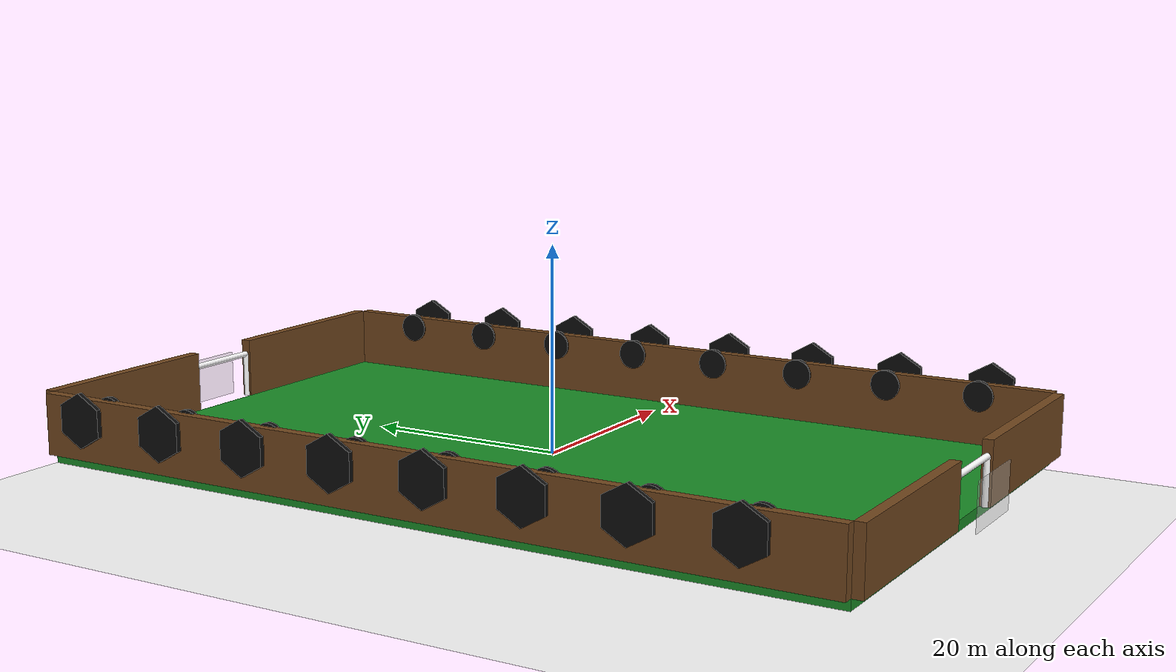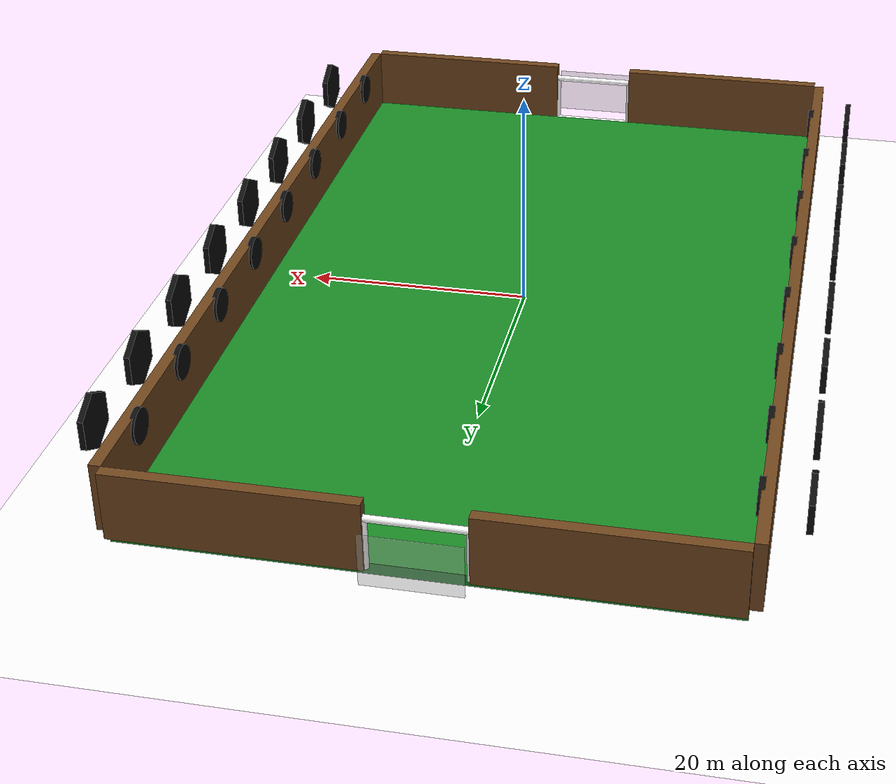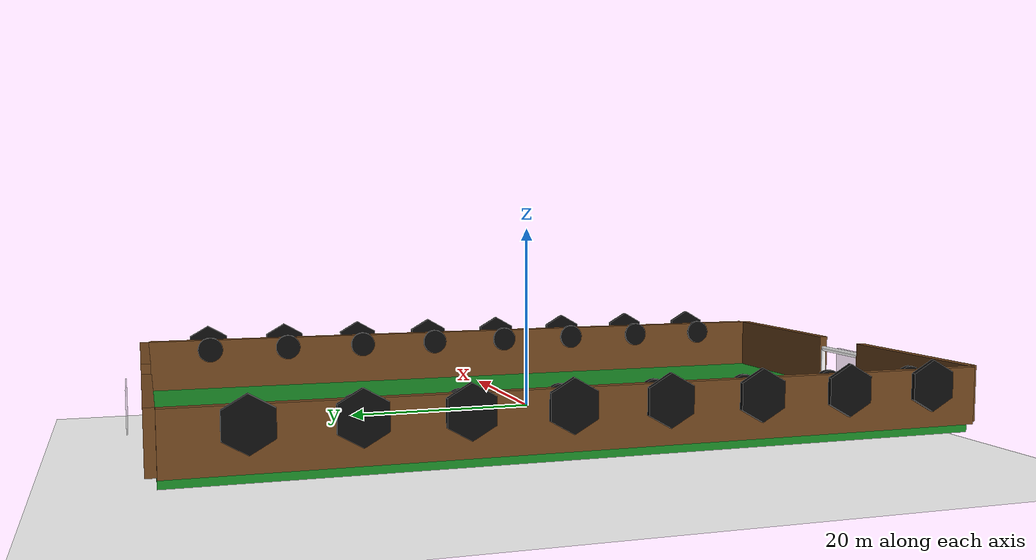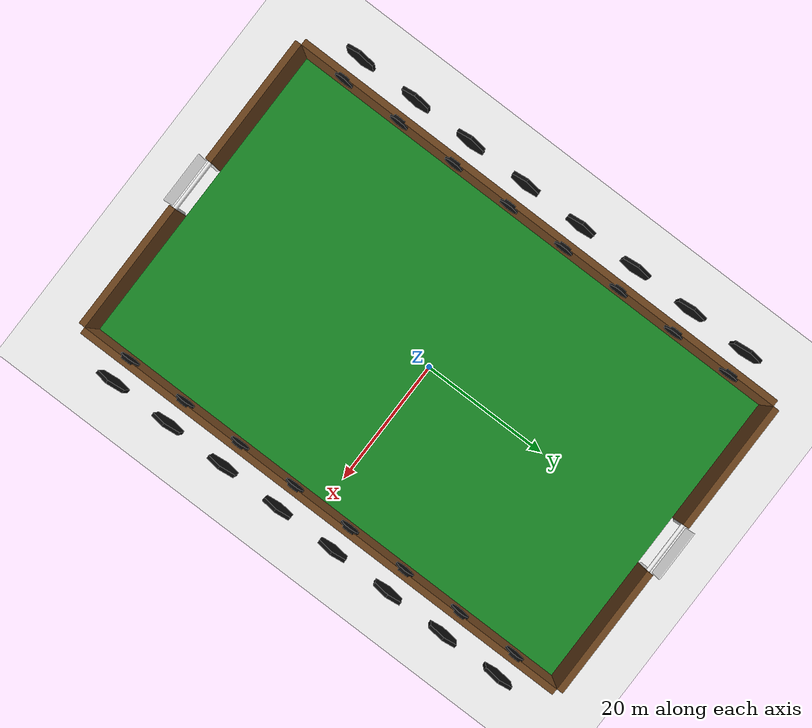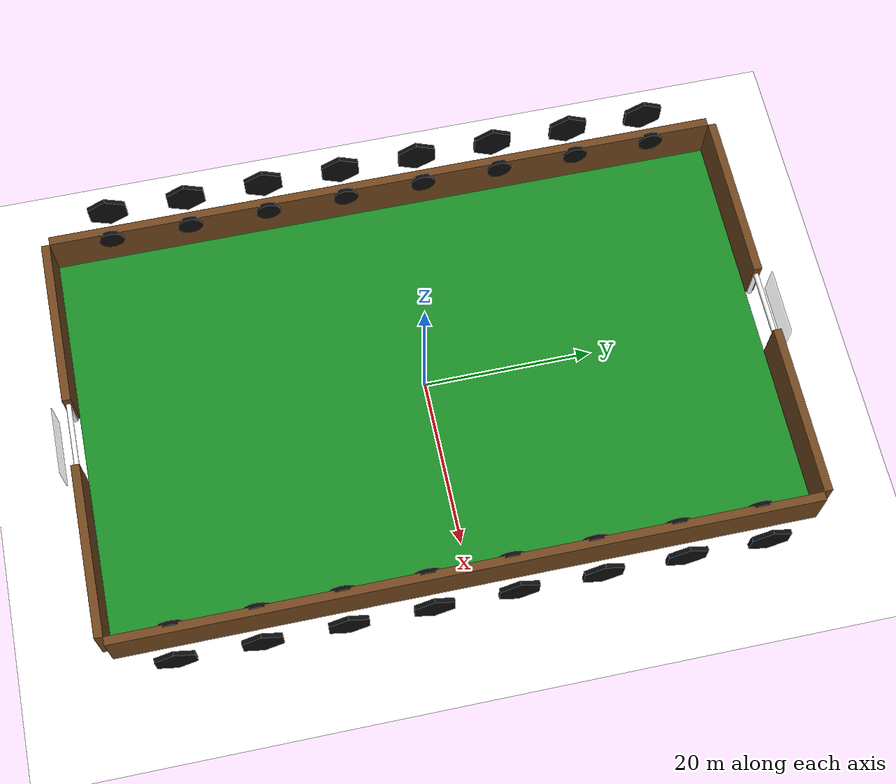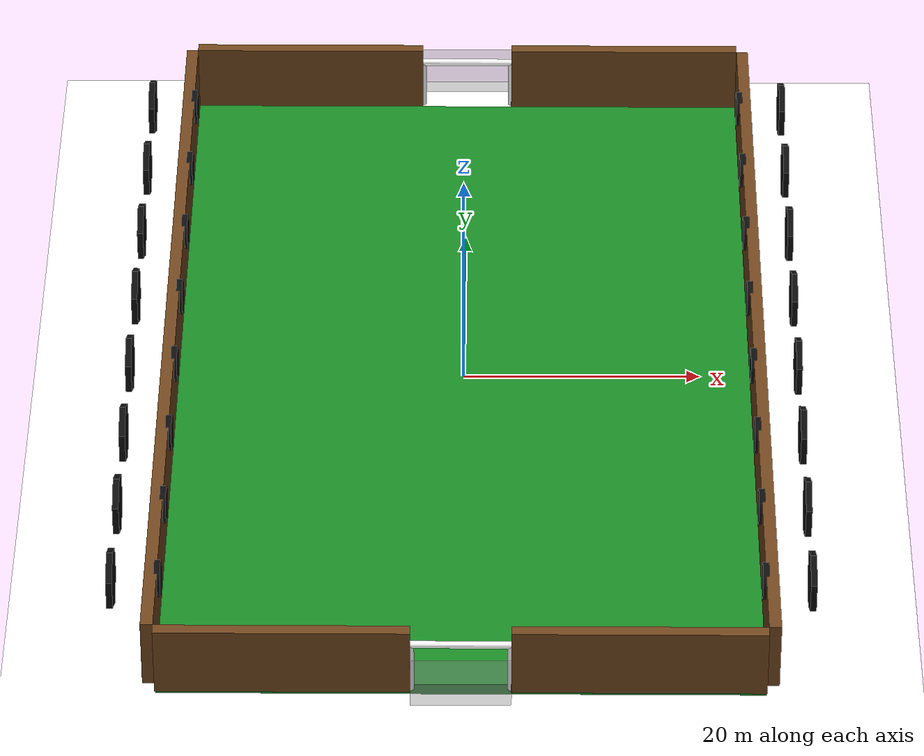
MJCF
<mujoco>

    <statistic meansize=".05"/>

    <default>
      <geom solref="0.004 1" solimp=".99 .99 .00001" condim="4"/>
    </default>

    <asset>
      <mesh name="outside_rubber" file="asset/outside_rubber/table_outside_rubber.obj" scale='0.1 0.1 0.1'/>
    </asset>

    <worldbody>
      <light directional="true" specular="0.2 0.2 0.2" pos="0 0 4" dir="0 0 -1"/>

      <body name="background" pos="0 0 -5" euler="0 0 0">
        <geom type="plane" size="500 500 .01" rgba="1.0 1.0 1.0 1.0" contype="0" conaffinity="0"/>
      </body>

      <!-- Playing field: half-width=24.25, half-length=40.5 (real 48.5×81 cm)
           Box top surface at Z=0 (the playing surface). -->
      <body name="ground" pos="0 0 -0.5" euler="0 0 180">
        <geom type="box" size="24.25 40.5 0.5" rgba="0.1 0.55 0.15 1" friction="0.01 0.1 10"/>
      </body>

      <!-- Y goalie rod Y=-33.25 -->
      <body name="table_side_rubber_y_goal_r">
        <geom type="cylinder" pos="-24.25 -33.25 4.8" euler="90 90 0" size="1.5 0.25"
              contype="5" conaffinity="5" rgba='0.05 0.05 0.05 1' friction="0.01" group="2"/>
      </body>
      <body name="table_side_rubber_y_goal_l">
        <geom type="cylinder" pos="24.25 -33.25 4.8" euler="90 90 0" size="1.5 0.25"
              contype="5" conaffinity="5" rgba='0.05 0.05 0.05 1' friction="0.01" group="2"/>
      </body>

      <!-- Y defense rod Y=-23.75 -->
      <body name="table_side_rubber_y_def_r">
        <geom type="cylinder" pos="-24.25 -23.75 4.8" euler="90 90 0" size="1.5 0.25"
              contype="5" conaffinity="5" rgba='0.05 0.05 0.05 1' friction="0.01" group="2"/>
      </body>
      <body name="table_side_rubber_y_def_l">
        <geom type="cylinder" pos="24.25 -23.75 4.8" euler="90 90 0" size="1.5 0.25"
              contype="5" conaffinity="5" rgba='0.05 0.05 0.05 1' friction="0.01" group="2"/>
      </body>

      <!-- Y midfield rod Y=-4.75 -->
      <body name="table_side_rubber_y_mid_r">
        <geom type="cylinder" pos="-24.25 -4.75 4.8" euler="90 90 0" size="1.5 0.25"
              contype="5" conaffinity="5" rgba='0.05 0.05 0.05 1' friction="0.01" group="2"/>
      </body>
      <body name="table_side_rubber_y_mid_l">
        <geom type="cylinder" pos="24.25 -4.75 4.8" euler="90 90 0" size="1.5 0.25"
              contype="5" conaffinity="5" rgba='0.05 0.05 0.05 1' friction="0.01" group="2"/>
      </body>

      <!-- Y attack rod Y=14.25 -->
      <body name="table_side_rubber_y_attack_r">
        <geom type="cylinder" pos="-24.25 14.25 4.8" euler="90 90 0" size="1.5 0.25"
              contype="5" conaffinity="5" rgba='0.05 0.05 0.05 1' friction="0.01" group="2"/>
      </body>
      <body name="table_side_rubber_y_attack_l">
        <geom type="cylinder" pos="24.25 14.25 4.8" euler="90 90 0" size="1.5 0.25"
              contype="5" conaffinity="5" rgba='0.05 0.05 0.05 1' friction="0.01" group="2"/>
      </body>

      <!-- B goalie rod Y=33.25 -->
      <body name="table_side_rubber_b_goal_r">
        <geom type="cylinder" pos="-24.25 33.25 4.8" euler="90 90 0" size="1.5 0.25"
              contype="5" conaffinity="5" rgba='0.05 0.05 0.05 1' friction="0.01" group="2"/>
      </body>
      <body name="table_side_rubber_b_goal_l">
        <geom type="cylinder" pos="24.25 33.25 4.8" euler="90 90 0" size="1.5 0.25"
              contype="5" conaffinity="5" rgba='0.05 0.05 0.05 1' friction="0.01" group="2"/>
      </body>

      <!-- B defense rod Y=23.75 -->
      <body name="table_side_rubber_b_def_r">
        <geom type="cylinder" pos="-24.25 23.75 4.8" euler="90 90 0" size="1.5 0.25"
              contype="5" conaffinity="5" rgba='0.05 0.05 0.05 1' friction="0.01" group="2"/>
      </body>
      <body name="table_side_rubber_b_def_l">
        <geom type="cylinder" pos="24.25 23.75 4.8" euler="90 90 0" size="1.5 0.25"
              contype="5" conaffinity="5" rgba='0.05 0.05 0.05 1' friction="0.01" group="2"/>
      </body>

      <!-- B midfield rod Y=4.75 -->
      <body name="table_side_rubber_b_mid_r">
        <geom type="cylinder" pos="-24.25 4.75 4.8" euler="90 90 0" size="1.5 0.25"
              contype="5" conaffinity="5" rgba='0.05 0.05 0.05 1' friction="0.01" group="2"/>
      </body>
      <body name="table_side_rubber_b_mid_l">
        <geom type="cylinder" pos="24.25 4.75 4.8" euler="90 90 0" size="1.5 0.25"
              contype="5" conaffinity="5" rgba='0.05 0.05 0.05 1' friction="0.01" group="2"/>
      </body>

      <!-- B attack rod Y=-14.25 -->
      <body name="table_side_rubber_b_attack_r">
        <geom type="cylinder" pos="-24.25 -14.25 4.8" euler="90 90 0" size="1.5 0.25"
              contype="5" conaffinity="5" rgba='0.05 0.05 0.05 1' friction="0.01" group="2"/>
      </body>
      <body name="table_side_rubber_b_attack_l">
        <geom type="cylinder" pos="24.25 -14.25 4.8" euler="90 90 0" size="1.5 0.25"
              contype="5" conaffinity="5" rgba='0.05 0.05 0.05 1' friction="0.01" group="2"/>
      </body>

    <!-- Outside rubber pads (visual only) -->
      <body name="outside_rubber_y_goal_r" pos="-28 -33.25 4.8" euler="0 0 90">
        <geom contype="0" conaffinity="0" type="mesh" mesh="outside_rubber" rgba='0.05 0.05 0.05 1' group="2"/>
      </body>
      <body name="outside_rubber_y_goal_l" pos="28 -33.25 4.8" euler="0 0 90">
        <geom contype="0" conaffinity="0" type="mesh" mesh="outside_rubber" rgba='0.05 0.05 0.05 1' group="2"/>
      </body>
      <body name="outside_rubber_y_def_r" pos="-28 -23.75 4.8" euler="0 0 90">
        <geom contype="0" conaffinity="0" type="mesh" mesh="outside_rubber" rgba='0.05 0.05 0.05 1' group="2"/>
      </body>
      <body name="outside_rubber_y_def_l" pos="28 -23.75 4.8" euler="0 0 90">
        <geom contype="0" conaffinity="0" type="mesh" mesh="outside_rubber" rgba='0.05 0.05 0.05 1' group="2"/>
      </body>
      <body name="outside_rubber_y_mid_r" pos="-28 -4.75 4.8" euler="0 0 90">
        <geom contype="0" conaffinity="0" type="mesh" mesh="outside_rubber" rgba='0.05 0.05 0.05 1' group="2"/>
      </body>
      <body name="outside_rubber_y_mid_l" pos="28 -4.75 4.8" euler="0 0 90">
        <geom contype="0" conaffinity="0" type="mesh" mesh="outside_rubber" rgba='0.05 0.05 0.05 1' group="2"/>
      </body>
      <body name="outside_rubber_y_attack_r" pos="-28 14.25 4.8" euler="0 0 90">
        <geom contype="0" conaffinity="0" type="mesh" mesh="outside_rubber" rgba='0.05 0.05 0.05 1' group="2"/>
      </body>
      <body name="outside_rubber_y_attack_l" pos="28 14.25 4.8" euler="0 0 90">
        <geom contype="0" conaffinity="0" type="mesh" mesh="outside_rubber" rgba='0.05 0.05 0.05 1' group="2"/>
      </body>

      <body name="outside_rubber_b_goal_r" pos="-28 33.25 4.8" euler="0 0 90">
        <geom contype="0" conaffinity="0" type="mesh" mesh="outside_rubber" rgba='0.05 0.05 0.05 1' group="2"/>
      </body>
      <body name="outside_rubber_b_goal_l" pos="28 33.25 4.8" euler="0 0 90">
        <geom contype="0" conaffinity="0" type="mesh" mesh="outside_rubber" rgba='0.05 0.05 0.05 1' group="2"/>
      </body>
      <body name="outside_rubber_b_def_r" pos="-28 23.75 4.8" euler="0 0 90">
        <geom contype="0" conaffinity="0" type="mesh" mesh="outside_rubber" rgba='0.05 0.05 0.05 1' group="2"/>
      </body>
      <body name="outside_rubber_b_def_l" pos="28 23.75 4.8" euler="0 0 90">
        <geom contype="0" conaffinity="0" type="mesh" mesh="outside_rubber" rgba='0.05 0.05 0.05 1' group="2"/>
      </body>
      <body name="outside_rubber_b_mid_r" pos="-28 4.75 4.8" euler="0 0 90">
        <geom contype="0" conaffinity="0" type="mesh" mesh="outside_rubber" rgba='0.05 0.05 0.05 1' group="2"/>
      </body>
      <body name="outside_rubber_b_mid_l" pos="28 4.75 4.8" euler="0 0 90">
        <geom contype="0" conaffinity="0" type="mesh" mesh="outside_rubber" rgba='0.05 0.05 0.05 1' group="2"/>
      </body>
      <body name="outside_rubber_b_attack_r" pos="-28 -14.25 4.8" euler="0 0 90">
        <geom contype="0" conaffinity="0" type="mesh" mesh="outside_rubber" rgba='0.05 0.05 0.05 1' group="2"/>
      </body>
      <body name="outside_rubber_b_attack_l" pos="28 -14.25 4.8" euler="0 0 90">
        <geom contype="0" conaffinity="0" type="mesh" mesh="outside_rubber" rgba='0.05 0.05 0.05 1' group="2"/>
      </body>

      <!-- SIDE WALLS — long brown boxes along the full length -->
      <!-- Left wall at X = -24.25 -->
      <body name="wall_left" pos="-24.75 0 3">
        <geom type="box" size="0.5 40.5 3" rgba="0.45 0.28 0.12 1"
              contype="0" conaffinity="0" group="2"/>
      </body>
      <!-- Right wall at X = +24.25 -->
      <body name="wall_right" pos="24.75 0 3">
        <geom type="box" size="0.5 40.5 3" rgba="0.45 0.28 0.12 1"
              contype="0" conaffinity="0" group="2"/>
      </body>

      <!-- END WALL — Yellow end (Y = -40.5), split around goal opening (X ±4.0) -->
      <!-- Left segment: X from -24.25 to -4.0 → half-width 10.125, center X = -14.125 -->
      <body name="wall_y_end_left" pos="-14.125 -41.0 3">
        <geom type="box" size="10.125 0.5 3" rgba="0.45 0.28 0.12 1"
              contype="0" conaffinity="0" group="2"/>
      </body>
      <!-- Right segment: X from 4.0 to 24.25 → center X = 14.125 -->
      <body name="wall_y_end_right" pos="14.125 -41.0 3">
        <geom type="box" size="10.125 0.5 3" rgba="0.45 0.28 0.12 1"
              contype="0" conaffinity="0" group="2"/>
      </body>

      <!-- END WALL — Blue end (Y = +40.5), split around goal opening -->
      <body name="wall_b_end_left" pos="-14.125 41.0 3">
        <geom type="box" size="10.125 0.5 3" rgba="0.45 0.28 0.12 1"
              contype="0" conaffinity="0" group="2"/>
      </body>
      <body name="wall_b_end_right" pos="14.125 41.0 3">
        <geom type="box" size="10.125 0.5 3" rgba="0.45 0.28 0.12 1"
              contype="0" conaffinity="0" group="2"/>
      </body>

      <!-- YELLOW GOAL (Y = -40.5) — white posts + crossbar, goal height 4.5cm -->
      <!-- Left post -->
      <body name="goal_y_post_left" pos="-4.0 -41.0 2.25">
        <geom type="cylinder" size="0.3 2.25" rgba="1 1 1 1"
              contype="0" conaffinity="0" group="2"/>
      </body>
      <!-- Right post -->
      <body name="goal_y_post_right" pos="4.0 -41.0 2.25">
        <geom type="cylinder" size="0.3 2.25" rgba="1 1 1 1"
              contype="0" conaffinity="0" group="2"/>
      </body>
      <!-- Crossbar -->
      <body name="goal_y_crossbar" pos="0 -41.0 4.5" euler="0 90 0">
        <geom type="cylinder" size="0.3 4.0" rgba="1 1 1 1"
              contype="0" conaffinity="0" group="2"/>
      </body>
      <!-- Back net (thin box behind goal) -->
      <body name="goal_y_net" pos="0 -43.0 2.25">
        <geom type="box" size="4.0 0.05 2.25" rgba="0.85 0.85 0.85 0.4"
              contype="0" conaffinity="0" group="2"/>
      </body>

      <!-- BLUE GOAL (Y = +40.5) — white posts + crossbar -->
      <!-- Left post -->
      <body name="goal_b_post_left" pos="-4.0 41.0 2.25">
        <geom type="cylinder" size="0.3 2.25" rgba="1 1 1 1"
              contype="0" conaffinity="0" group="2"/>
      </body>
      <!-- Right post -->
      <body name="goal_b_post_right" pos="4.0 41.0 2.25">
        <geom type="cylinder" size="0.3 2.25" rgba="1 1 1 1"
              contype="0" conaffinity="0" group="2"/>
      </body>
      <!-- Crossbar -->
      <body name="goal_b_crossbar" pos="0 41.0 4.5" euler="0 90 0">
        <geom type="cylinder" size="0.3 4.0" rgba="1 1 1 1"
              contype="0" conaffinity="0" group="2"/>
      </body>
      <!-- Back net -->
      <body name="goal_b_net" pos="0 43.0 2.25">
        <geom type="box" size="4.0 0.05 2.25" rgba="0.85 0.85 0.85 0.4"
              contype="0" conaffinity="0" group="2"/>
      </body>

    </worldbody>
  </mujoco>
